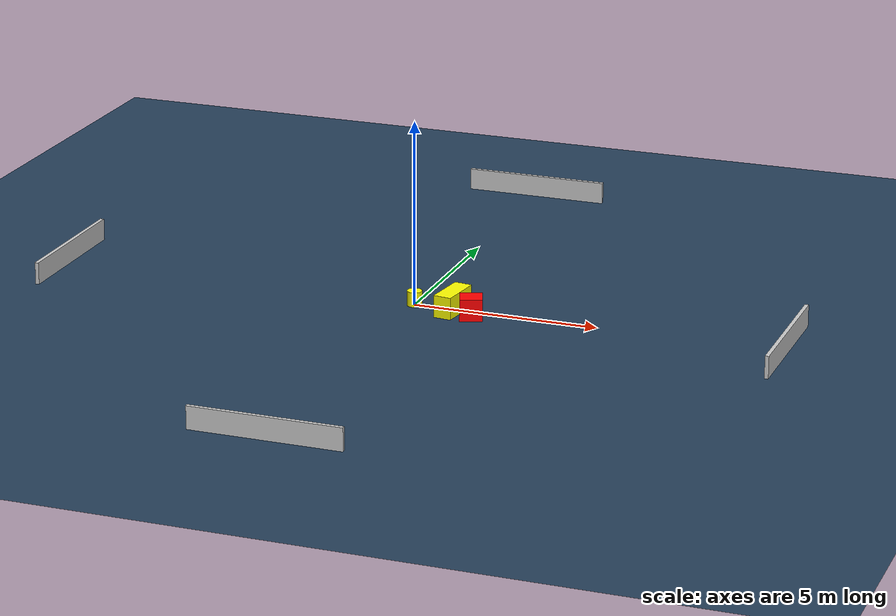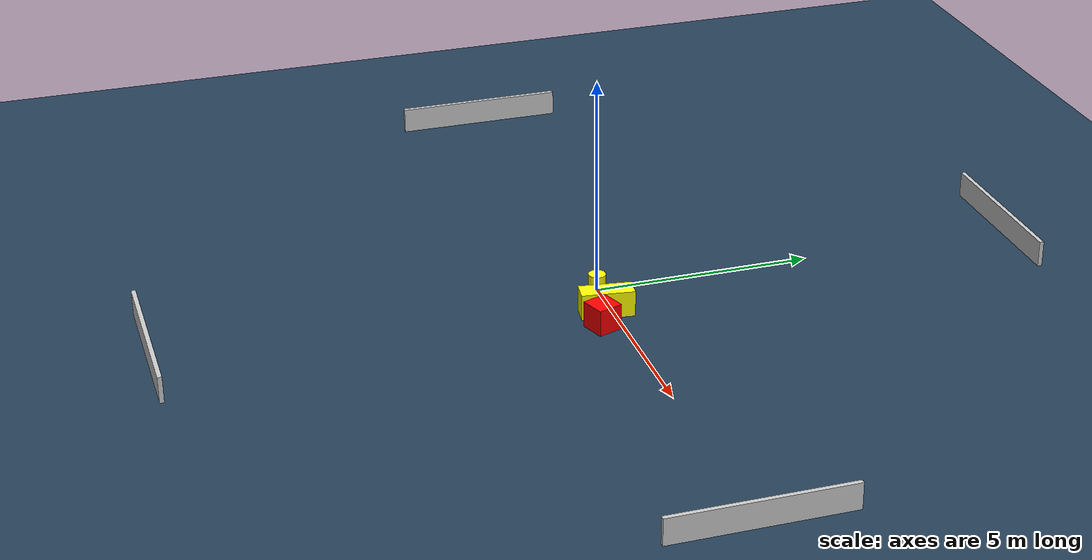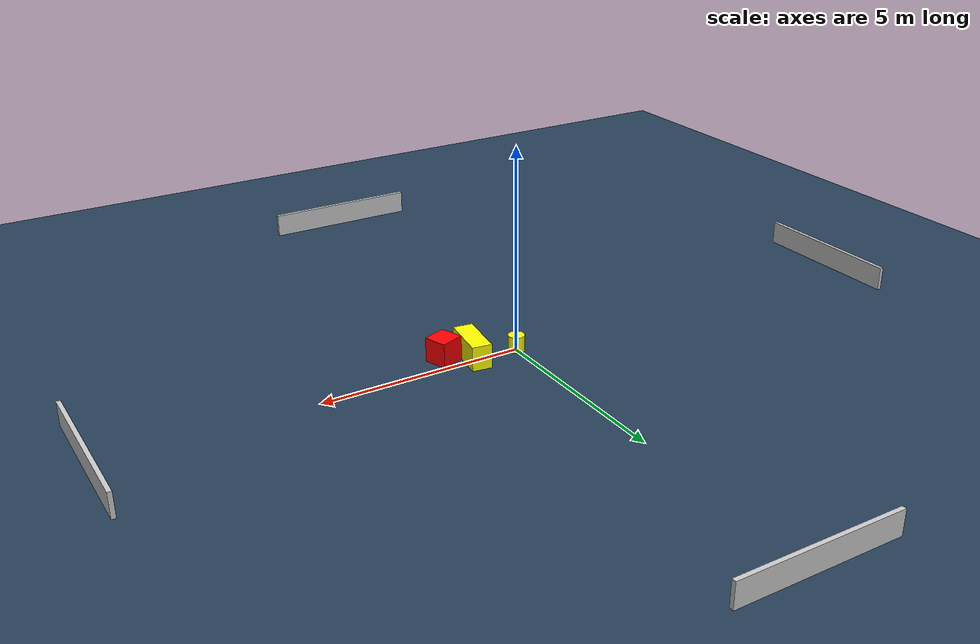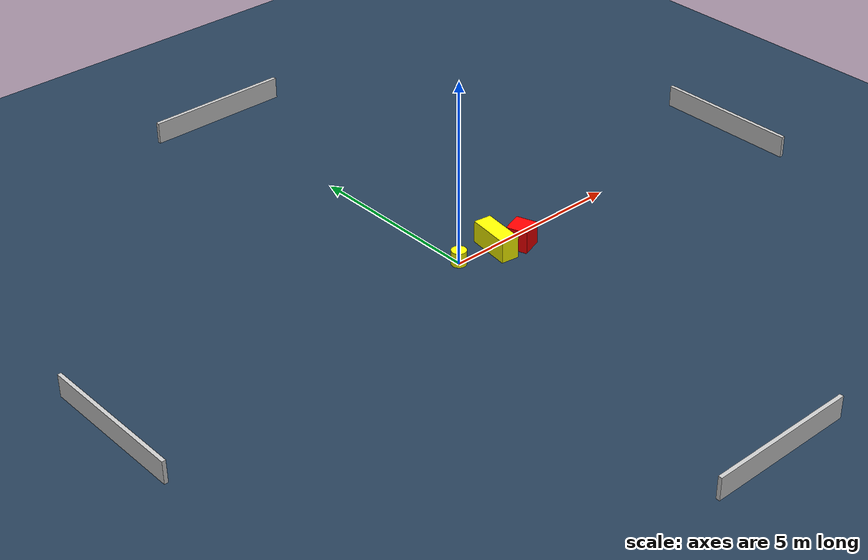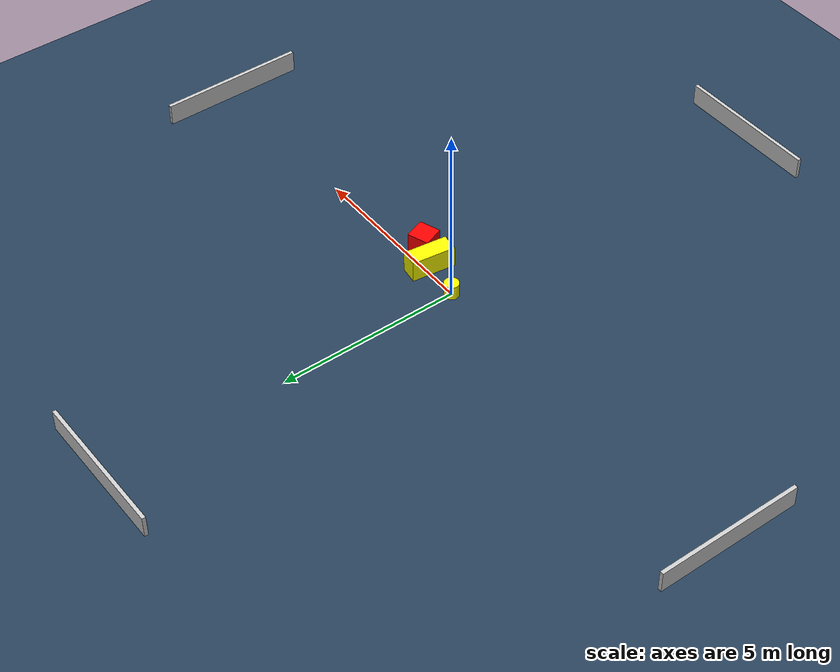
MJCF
<?xml version="1.0" ?>
<mujoco model="generated_environment">
  <option timestep="0.01" integrator="RK4" cone="elliptic"/>
  <default>
    <geom density="1"/>
  </default>
  <asset>
    <texture builtin="gradient" height="3072" name="skybox" rgb1="0.3 0.5 0.7" rgb2="0 0 0" type="skybox" width="512"/>
    <texture builtin="checker" height="300" name="groundplane" rgb1="0.2 0.3 0.4" rgb2="0.1 0.2 0.3" type="2d" width="300"/>
    <material name="groundplane" reflectance="0.2" texrepeat="5 5" texture="groundplane"/>
  </asset>
  <worldbody>
    <light dir="0 0 -1" directional="true" pos="0 0 1.5"/>
    <geom condim="3" friction="0.5 0.005 0.001" material="groundplane" name="floor" pos="0 0 0" size="0 0 0.05" type="plane"/>
    <body name="walls">
      <geom name="wall_1" condim="4" pos="-10.0 0.0 0.3" rgba="0.800000011920929 0.800000011920929 0.800000011920929 1.0" size="0.05 2.0 0.3" type="box"/>
      <geom name="wall_2" condim="4" pos="10.0 0.0 0.3" rgba="0.800000011920929 0.800000011920929 0.800000011920929 1.0" size="0.05 2.0 0.3" type="box"/>
      <geom name="wall_3" condim="4" pos="0.0 -10.0 0.3" rgba="0.800000011920929 0.800000011920929 0.800000011920929 1.0" size="2.0 0.05 0.3" type="box"/>
      <geom name="wall_4" condim="4" pos="0.0 10.0 0.3" rgba="0.800000011920929 0.800000011920929 0.800000011920929 1.0" size="2.0 0.05 0.3" type="box"/>
    </body>
    <body name="robot">
      <joint name="joint_x" type="slide" pos="0 0 0" axis="1 0 0"/>
      <joint name="joint_y" type="slide" pos="0 0 0" axis="0 1 0"/>
      <geom name="robot" type="cylinder" pos="0.0 0.0 0.2" size="0.2 0.2 0.0" mass="5.0" friction="1.0 0.005 0.0001" condim="4" rgba="1.0 1.0 0.0 1.0"/>
    </body>
    <body name="obstacle_1_movable">
      <geom name="obstacle_1_movable" condim="4" pos="1.1146976729413491 -0.14558620072552708 0.3" euler="0 0 352.29054540528637" friction="0.0 0.005 0.001" rgba="1.0 1.0 0.0 1.0" size="0.24157570273422013 0.5983004025970611 0.3" type="box" mass="0.1"/>
      <joint type="free"/>
    </body>
    <body name="obstacle_2_static">
      <geom name="obstacle_2_static" condim="4" pos="1.7193703112612282 -0.4351958732378189 0.3" euler="0 0 289.328195785152" friction="0.0 0.005 0.001" rgba="1.0 0.0 0.0 1.0" size="0.28988109748998825 0.29715648448087484 0.3" type="box"/>
    </body>
  </worldbody>
  <actuator>
    <motor name="actuator_x" joint="joint_x" gear="1" ctrlrange="-1 1"/>
    <motor name="actuator_y" joint="joint_y" gear="1" ctrlrange="-1 1"/>
  </actuator>
</mujoco>
